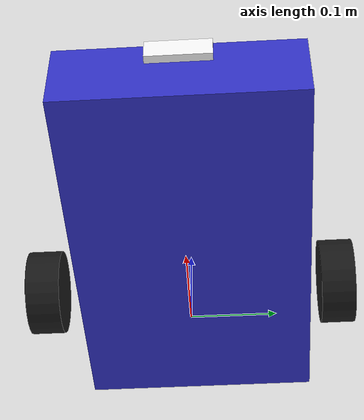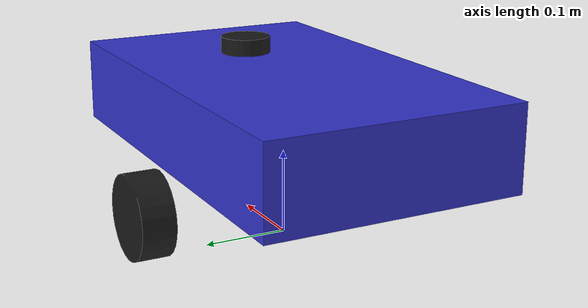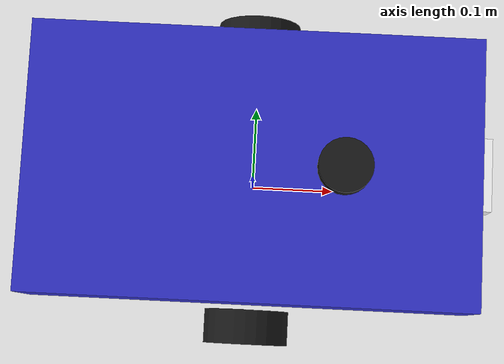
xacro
<?xml version="1.0"?>
<robot xmlns:xacro="http://www.ros.org/wiki/xacro" name="dif_bot">

  <!-- Importar propiedades -->
  <xacro:include filename="$(find dif_bot_description)/urdf/dif_bot_properties.xacro"/>

  <!-- Materiales -->
  <material name="blue">
    <color rgba="0.2 0.2 0.8 1.0"/>
  </material>
  <material name="black">
    <color rgba="0.1 0.1 0.1 1.0"/>
  </material>
  <material name="white">
    <color rgba="1.0 1.0 1.0 1.0"/>
  </material>

  <!-- ==================== MACROS DE INERCIA ==================== -->
  <xacro:macro name="box_inertia" params="m w h d">
    <inertial>
      <origin xyz="0 0 0" rpy="0 0 0"/>
      <mass value="${m}"/>
      <inertia ixx="${(m/12) * (h*h + d*d)}" ixy="0.0" ixz="0.0"
               iyy="${(m/12) * (w*w + d*d)}" iyz="0.0"
               izz="${(m/12) * (w*w + h*h)}"/>
    </inertial>
  </xacro:macro>

  <xacro:macro name="cylinder_inertia" params="m r h">
    <inertial>
      <origin xyz="0 0 0" rpy="0 0 0"/>
      <mass value="${m}"/>
      <inertia ixx="${(m/12) * (3*r*r + h*h)}" ixy="0.0" ixz="0.0"
               iyy="${(m/12) * (3*r*r + h*h)}" iyz="0.0"
               izz="${(m/2) * (r*r)}"/>
    </inertial>
  </xacro:macro>

  <xacro:macro name="sphere_inertia" params="m r">
    <inertial>
      <origin xyz="0 0 0" rpy="0 0 0"/>
      <mass value="${m}"/>
      <inertia ixx="${(2.0/5.0) * m * (r*r)}" ixy="0.0" ixz="0.0"
               iyy="${(2.0/5.0) * m * (r*r)}" iyz="0.0"
               izz="${(2.0/5.0) * m * (r*r)}"/>
    </inertial>
  </xacro:macro>

  <!-- Base Footprint -->
  <link name="base_footprint"/>

  <joint name="base_footprint_joint" type="fixed">
    <parent link="base_footprint"/>
    <child link="base_link"/>
    <origin xyz="0 0 ${wheel_radius - wheel_zoff}" rpy="0 0 0"/>
  </joint>

  <!-- Base Link -->
  <link name="base_link"/>

  <!-- Joint y Link del Chasis -->
  <joint name="chassis_joint" type="fixed">
    <parent link="base_link"/>
    <child link="chassis"/>
    <origin xyz="0 0 0" rpy="0 0 0"/>
  </joint>

  <link name="chassis">
    <visual>
      <origin xyz="0 0 ${chassis_height/2}" rpy="0 0 0"/>
      <geometry>
        <box size="${chassis_length} ${chassis_width} ${chassis_height}"/>
      </geometry>
      <material name="blue"/>
    </visual>
    <collision>
      <origin xyz="0 0 ${chassis_height/2}" rpy="0 0 0"/>
      <geometry>
        <box size="${chassis_length} ${chassis_width} ${chassis_height}"/>
      </geometry>
    </collision>
    <xacro:box_inertia m="${chassis_mass}" w="${chassis_length}" h="${chassis_width}" d="${chassis_height}"/>
  </link>

  <!-- Macro para las ruedas -->
  <xacro:macro name="wheel" params="prefix suffix reflect">
    <joint name="${prefix}_wheel_joint" type="continuous">
      <parent link="base_link"/>
      <child link="${prefix}_wheel"/>
      <origin xyz="0.0 ${reflect*wheel_ygap} ${wheel_zoff}" rpy="-1.5707 0 0"/>
      <axis xyz="0 0 1"/>
    </joint>

    <link name="${prefix}_wheel">
      <visual>
        <geometry>
          <cylinder radius="${wheel_radius}" length="${wheel_length}"/>
        </geometry>
        <material name="black"/>
      </visual>
      <collision>
        <geometry>
          <cylinder radius="${wheel_radius}" length="${wheel_length}"/>
        </geometry>
      </collision>
      <xacro:cylinder_inertia m="${wheel_mass}" r="${wheel_radius}" h="${wheel_length}"/>
    </link>
  </xacro:macro>

  <!-- Instanciar ruedas -->
  <xacro:wheel prefix="left" suffix="wheel" reflect="1.0"/>
  <xacro:wheel prefix="right" suffix="wheel" reflect="-1.0"/>

  <!-- Rueda Loca (Caster) -->
  <joint name="caster_wheel_joint" type="fixed">
    <parent link="chassis"/>
    <child link="caster_wheel"/>
    <origin xyz="${chassis_length/2 - 0.1} 0 ${caster_radius}" rpy="0 0 0"/>
  </joint>

  <link name="caster_wheel">
    <visual>
      <geometry>
        <sphere radius="${caster_radius}"/>
      </geometry>
      <material name="white"/>
    </visual>
    <collision>
      <geometry>
        <sphere radius="${caster_radius}"/>
      </geometry>
    </collision>
    <xacro:sphere_inertia m="${caster_mass}" r="${caster_radius}"/>
  </link>
<!-- Incluir sensores -->
  <xacro:include filename="$(find dif_bot_description)/urdf/sensors.xacro"/>
</robot>

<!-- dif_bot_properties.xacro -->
<robot xmlns:xacro="http://www.ros.org/wiki/xacro">

  <!-- Propiedades del Chasis -->
  <xacro:property name="chassis_length" value="0.5"/>
  <xacro:property name="chassis_width" value="0.3"/>
  <xacro:property name="chassis_height" value="0.1"/>
  <xacro:property name="chassis_mass" value="1.0"/>

  <!-- Propiedades de las Ruedas -->
  <xacro:property name="wheel_radius" value="0.05"/>
  <xacro:property name="wheel_length" value="0.04"/>
  <xacro:property name="wheel_ygap" value="0.175"/>
  <xacro:property name="wheel_zoff" value="-0.05"/>
  <xacro:property name="wheel_mass" value="0.1"/>

  <!-- Propiedad de la Rueda Loca -->
  <xacro:property name="caster_radius" value="0.025"/>
  <xacro:property name="caster_mass" value="0.05"/>

</robot>

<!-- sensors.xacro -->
<robot xmlns:xacro="http://www.ros.org/wiki/xacro">

  <!-- ==================== IMU ==================== -->
  <joint name="imu_joint" type="fixed">
    <parent link="base_link"/>
    <child link="imu_link"/>
    <origin xyz="0.0 0.0 0.05" rpy="0 0 0"/>
  </joint>

  <link name="imu_link">
    <visual>
      <geometry>
        <box size="0.02 0.02 0.01"/>
      </geometry>
      <material name="black"/>
    </visual>
    <collision>
      <geometry>
        <box size="0.02 0.02 0.01"/>
      </geometry>
    </collision>
    <inertial>
      <mass value="0.01"/>
      <inertia ixx="0.000001" ixy="0" ixz="0" iyy="0.000001" iyz="0" izz="0.000001"/>
    </inertial>
  </link>

  <!-- ==================== LIDAR ==================== -->
  <joint name="lidar_joint" type="fixed">
    <parent link="chassis"/>
    <child link="laser_frame"/>
    <origin xyz="0.1 0.0 ${chassis_height}" rpy="0 0 0"/>
  </joint>

  <link name="laser_frame">
    <visual>
      <geometry>
        <cylinder radius="0.03" length="0.04"/>
      </geometry>
      <material name="black"/>
    </visual>
    <collision>
      <geometry>
        <cylinder radius="0.03" length="0.04"/>
      </geometry>
    </collision>
    <inertial>
      <mass value="0.1"/>
      <inertia ixx="0.00001" ixy="0" ixz="0" iyy="0.00001" iyz="0" izz="0.00001"/>
    </inertial>
  </link>

  <!-- ==================== CÁMARA ==================== -->
  <joint name="camera_joint" type="fixed">
    <parent link="chassis"/>
    <child link="camera_link"/>
    <origin xyz="${chassis_length/2} 0.0 ${chassis_height - 0.02}" rpy="0 0 0"/>
  </joint>

  <link name="camera_link">
    <visual>
      <geometry>
        <box size="0.02 0.08 0.03"/>
      </geometry>
      <material name="white"/>
    </visual>
    <collision>
      <geometry>
        <box size="0.02 0.08 0.03"/>
      </geometry>
    </collision>
    <inertial>
      <mass value="0.02"/>
      <inertia ixx="0.000001" ixy="0" ixz="0" iyy="0.000001" iyz="0" izz="0.000001"/>
    </inertial>
  </link>

</robot>
